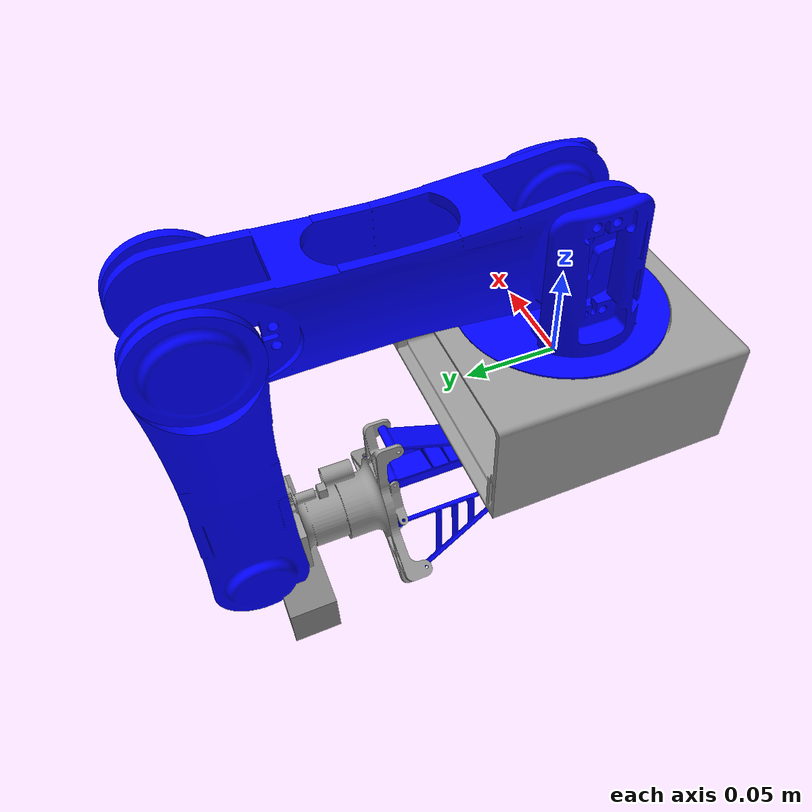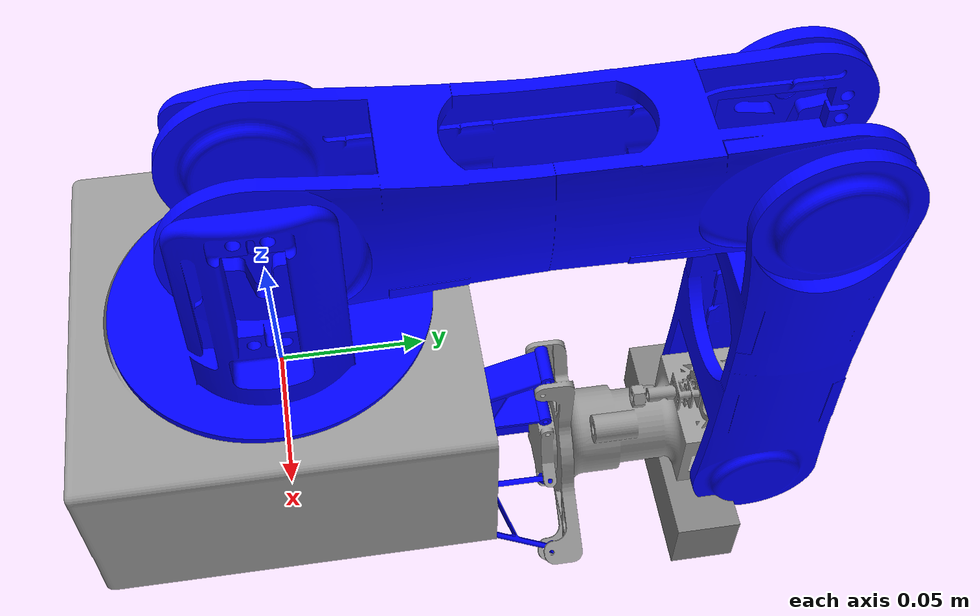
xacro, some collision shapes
<?xml version="1.0"?>
<robot name="agrirover" xmlns:xacro="http://www.ros.org/wiki/xacro">

  <xacro:include filename="$(find agrirover_description)/urdf/mech/arm_mech.urdf"/>
  <xacro:include filename="$(find agrirover_description)/urdf/sensors/intel_rgbd_cam_d435.urdf.xacro"/>

  <joint name="gripper_to_camera" type="fixed">
  <parent link="gripper"/>
  <child link="camera_head_link"/>
  <origin xyz="-0.025 0.02 0" rpy="1.57 0 -1.57"/>
  </joint>

</robot>

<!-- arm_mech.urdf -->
<robot name="arm">

<!-- Base Link -->
  <link name="base_link">
    <inertial>
      <mass value="5.0"/>
      <origin xyz="0 0 0" rpy="0 0 0"/>
      <inertia ixx="0.1" ixy="0.0" ixz="0.0" iyy="0.1" iyz="0.0" izz="0.1"/>
    </inertial>
    <visual>
      <geometry>
        <mesh filename="package://agrirover_description/meshes/Base.stl" scale="0.001 0.001 0.001"/>
      </geometry>
      <material name="gray">
        <color rgba="0.6 0.6 0.6 1"/>
      </material>
    </visual>
    <collision>
      <geometry>
        <mesh filename="package://agrirover_description/meshes/Base_simplified.stl" scale="0.001 0.001 0.001"/>
      </geometry>
      <origin xyz="0 0 0" rpy="0 0 0"/>
    </collision>
  </link>

<!-- Arm Link 0 -->
  <link name="arm_link_0">
    <inertial>
      <mass value="3.0"/>
      <origin xyz="0 0 0" rpy="0 0 0"/>
      <inertia ixx="0.05" ixy="0.0" ixz="0.0" iyy="0.05" iyz="0.0" izz="0.05"/>
    </inertial>
    <visual>
      <geometry>
        <mesh filename="package://agrirover_description/meshes/Link_0.stl" scale="0.001 0.001 0.001"/>
      </geometry>
      <material name="blue">
        <color rgba="0 0 1 1"/>
      </material>
    </visual>
    <collision>
      <geometry>
        <mesh filename="package://agrirover_description/meshes/Link_0_simplified.stl" scale="0.001 0.001 0.001"/>
      </geometry>
      <origin xyz="0 0 0" rpy="0 0 0"/>
    </collision>
  </link>

<!-- Arm Link 1 -->
  <link name="arm_link_1">
    <inertial>
      <mass value="2.0"/>
      <origin xyz="0 0 0" rpy="0 0 0"/>
      <inertia ixx="0.03" ixy="0.0" ixz="0.0" iyy="0.03" iyz="0.0" izz="0.03"/>
    </inertial>
    <visual>
      <geometry>
        <mesh filename="package://agrirover_description/meshes/Link_1.stl" scale="0.001 0.001 0.001"/>
      </geometry>
      <material name="blue">
        <color rgba="0 0 1 1"/>
      </material>
    </visual>
    <collision>
      <geometry>
        <mesh filename="package://agrirover_description/meshes/Link_1.stl" scale="0.001 0.001 0.001"/>
      </geometry>
      <origin xyz="0 0 0" rpy="0 0 0"/>
    </collision>
  </link>

<!-- Arm Link 2 -->
  <link name="arm_link_2">
    <inertial>
      <mass value="1.5"/>
      <origin xyz="0 0 0" rpy="0 0 0"/>
      <inertia ixx="0.02" ixy="0.0" ixz="0.0" iyy="0.02" iyz="0.0" izz="0.02"/>
    </inertial>
    <visual>
      <geometry>
        <mesh filename="package://agrirover_description/meshes/Link_2.stl" scale="0.001 0.001 0.001"/>
      </geometry>
      <material name="blue">
        <color rgba="0 0 1 1"/>
      </material>
    </visual>
    <collision>
      <geometry>
        <mesh filename="package://agrirover_description/meshes/Link_2_simplified.stl" scale="0.001 0.001 0.001"/>
      </geometry>
      <origin xyz="0 0 0" rpy="0 0 0"/>
    </collision>
  </link>

<!-- World Link -->
  <link name="world"/>

  <!-- World to Base Joint -->
  <joint name="world_to_base" type="fixed">
    <parent link="world"/>
    <child link="base_link"/>
    <origin xyz="0 0 0" rpy="0 0 0"/>
  </joint>

<!-- Gripper Base -->
  <link name="gripper">
    <inertial>
      <mass value="0.5"/>
      <origin xyz="0 0 0" rpy="0 0 0"/>
      <inertia ixx="0.005" ixy="0.0" ixz="0.0" iyy="0.005" iyz="0.0" izz="0.005"/>
    </inertial>
    <visual>
      <geometry>
        <mesh filename="package://agrirover_description/meshes/gripper.stl" scale="0.001 0.001 0.001"/>
      </geometry>
      <material name="gray">
        <color rgba="0.6 0.6 0.6 1"/>
      </material>
    </visual>
    <collision>
      <geometry>
        <mesh filename="package://agrirover_description/meshes/gripper_simplified.stl" scale="0.001 0.001 0.001"/>
      </geometry>
    </collision>
  </link>

<!-- Finger 1 -->
  <link name="finger_1">
    <inertial>
      <mass value="0.1"/>
      <origin xyz="0 0 0" rpy="0 0 0"/>
      <inertia ixx="0.001" ixy="0.0" ixz="0.0" iyy="0.001" iyz="0.0" izz="0.001"/>
    </inertial>
    <visual>
      <geometry>
        <mesh filename="package://agrirover_description/meshes/finger.stl" scale="0.001 0.001 0.001"/>
      </geometry>
      <material name="blue">
        <color rgba="0 0 1 1"/>
      </material>
    </visual>
    <collision>
      <geometry>
        <mesh filename="package://agrirover_description/meshes/finger.stl" scale="0.001 0.001 0.001"/>
      </geometry>
    </collision>
  </link>

<!-- Finger 2 -->
  <link name="finger_2">
    <inertial>
      <mass value="0.1"/>
      <origin xyz="0 0 0" rpy="0 0 0"/>
      <inertia ixx="0.001" ixy="0.0" ixz="0.0" iyy="0.001" iyz="0.0" izz="0.001"/>
    </inertial>
    <visual>
      <geometry>
        <mesh filename="package://agrirover_description/meshes/finger.stl" scale="0.001 0.001 0.001"/>
      </geometry>
      <material name="blue">
        <color rgba="0 0 1 1"/>
      </material>
    </visual>
    <collision>
      <geometry>
        <mesh filename="package://agrirover_description/meshes/finger.stl" scale="0.001 0.001 0.001"/>
      </geometry>
    </collision>
  </link>

<!-- Finger 3 -->
  <link name="finger_3">
    <inertial>
      <mass value="0.1"/>
      <origin xyz="0 0 0" rpy="0 0 0"/>
      <inertia ixx="0.001" ixy="0.0" ixz="0.0" iyy="0.001" iyz="0.0" izz="0.001"/>
    </inertial>
    <visual>
      <geometry>
        <mesh filename="package://agrirover_description/meshes/finger.stl" scale="0.001 0.001 0.001"/>
      </geometry>
      <material name="blue">
        <color rgba="0 0 1 1"/>
      </material>
    </visual>
    <collision>
      <geometry>
        <mesh filename="package://agrirover_description/meshes/finger.stl" scale="0.001 0.001 0.001"/>
      </geometry>
    </collision>
  </link>

<!-- Base to arm_link_0 Joint -->
  <joint name="base_to_link_0" type="revolute">
    <parent link="base_link"/>
    <child link="arm_link_0"/>
    <origin xyz="0 0 0.03" rpy="0 0 1.57"/>
    <axis xyz="0 0 1"/>
    <limit effort="10.0" velocity="1.0" lower="0" upper="3.14"/>
  </joint>

<!-- arm_link_0 to arm_link_1 Joint -->
  <joint name="link_0_to_link_1" type="revolute">
    <parent link="arm_link_0"/>
    <child link="arm_link_1"/>
    <origin xyz="0 0 0.05" rpy="1.57 1.57 0"/>
    <axis xyz="0 0 1"/>
    <limit effort="10.0" velocity="1.0" lower="0" upper="3.14"/>
  </joint>

<!-- arm_link_1 to arm_link_2 Joint -->
  <joint name="link_1_to_link_2" type="revolute">
    <parent link="arm_link_1"/>
    <child link="arm_link_2"/>
    <origin xyz="0 0.176 0" rpy="0 0 -1.57"/>
    <axis xyz="0 0 1"/>
    <limit effort="10.0" velocity="1.0" lower="0" upper="3.14"/>
  </joint>

<!-- arm_link_2 to gripper Joint -->
  <joint name="link_2_to_gripper" type="revolute">
    <parent link="arm_link_2"/>
    <child link="gripper"/>
    <origin xyz="0 0.155 0" rpy="0 0 -1.57"/>
    <axis xyz="0 0 1"/>
    <limit effort="10.0" velocity="1.0" lower="0" upper="3.14"/>
  </joint>

<!-- finger_1 Joint -->
  <joint name="finger_1_joint" type="revolute">
    <parent link="gripper"/>
    <child link="finger_1"/>
    <origin xyz="0.02 0.08 -0.001" rpy="3.14 0 0"/>
    <axis xyz="0 0 1"/>
    <limit effort="10.0" velocity="1.0" lower="0" upper="0.9"/>
  </joint>

  <!-- Mimic Finger 2 Joint -->
  <joint name="finger_2_joint" type="fixed">
    <parent link="gripper"/>
    <child link="finger_2"/>
    <origin xyz="-0.0085 0.08 0.015" rpy="3.14 -2.0944 0"/>
    <axis xyz="0 0 1"/>  </joint>

<!-- Mimic Finger 3 Joint -->
  <joint name="finger_3_joint" type="fixed">
    <parent link="gripper"/>
    <child link="finger_3"/>
    <origin xyz="-0.0085 0.08 -0.015" rpy="3.14 2.0944 0"/>
    <axis xyz="0 0 1"/>
  </joint>

</robot>

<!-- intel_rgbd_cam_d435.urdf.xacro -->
<robot xmlns:xacro="http://www.ros.org/wiki/xacro">

  <xacro:arg name="use_camera" default="true"/>
  <xacro:arg name="use_gazebo" default="true"/>
  <xacro:arg name="prefix" default=""/>

  <xacro:if value="${'true' == '$(arg use_camera)' and 'true' == '$(arg use_gazebo)'}">

    <xacro:property name="M_PI" value="3.1415926535897931" />

    <xacro:property name="d435_cam_width" value="0.090"/>
    <xacro:property name="d435_cam_height" value="0.025"/>
    <xacro:property name="d435_cam_depth" value="0.02505"/>

    <xacro:property name="d435_cam_depth_to_infra1_offset" value="0.0"/>
    <xacro:property name="d435_cam_depth_to_infra2_offset" value="-0.050"/>
    <xacro:property name="d435_cam_depth_to_color_offset" value="0.015"/>

    <xacro:property name="camera_tilt_angle_deg" value="25"/>

    <link name="camera_head_link">
      <visual>
        <origin xyz="0 0 0" rpy="${M_PI/2} 0.0 ${M_PI/2}"/>
        <geometry>
          <mesh filename="file://$(find agrirover_description)/meshes/d435/visual/d435.stl" />
        </geometry>
        <material name="aluminum">
          <color rgba="0.5 0.5 0.5 1"/>
        </material>
      </visual>
      <collision>
        <origin xyz="0 0 0" rpy="0 0 0"/>
        <geometry>
          <box size="${d435_cam_depth} ${d435_cam_width} ${d435_cam_height}"/>
        </geometry>
      </collision>
      <inertial>
        <mass value="0.072" />
        <origin xyz="0 0 0" />
        <inertia ixx="0.003881243" ixy="0.0" ixz="0.0" iyy="0.000498940" iyz="0.0" izz="0.003879257" />
      </inertial>
    </link>

    <joint name="camera_head_depth_joint" type="fixed">
      <origin xyz="0 0 0" rpy="0 0 0"/>
      <parent link="camera_head_link"/>
      <child link="camera_head_depth_frame" />
    </joint>
    <link name="camera_head_depth_frame"/>

    <joint name="camera_head_depth_optical_joint" type="fixed">
      <origin xyz="0 0 0" rpy="${-M_PI/2} 0 ${-M_PI/2}" />
      <parent link="camera_head_depth_frame" />
      <child link="camera_head_depth_optical_frame" />
    </joint>
    <link name="camera_head_depth_optical_frame"/>

    <joint name="camera_head_infra1_joint" type="fixed">
      <origin xyz="0 ${d435_cam_depth_to_infra1_offset} 0" rpy="0 0 0" />
      <parent link="camera_head_link" />
      <child link="camera_head_infra1_frame" />
    </joint>
    <link name="camera_head_infra1_frame"/>

    <joint name="camera_head_infra1_optical_joint" type="fixed">
      <origin xyz="0 0 0" rpy="${-M_PI/2} 0 ${-M_PI/2}" />
      <parent link="camera_head_infra1_frame" />
      <child link="camera_head_infra1_optical_frame" />
    </joint>
    <link name="camera_head_infra1_optical_frame"/>

    <joint name="camera_head_infra2_joint" type="fixed">
      <origin xyz="0 ${d435_cam_depth_to_infra2_offset} 0" rpy="0 0 0" />
      <parent link="camera_head_link" />
      <child link="camera_head_infra2_frame" />
    </joint>
    <link name="camera_head_infra2_frame"/>

    <joint name="camera_head_infra2_optical_joint" type="fixed">
      <origin xyz="0 0 0" rpy="${-M_PI/2} 0 ${-M_PI/2}" />
      <parent link="camera_head_infra2_frame" />
      <child link="camera_head_infra2_optical_frame" />
    </joint>
    <link name="camera_head_infra2_optical_frame"/>

    <joint name="camera_head_color_joint" type="fixed">
      <origin xyz="0 ${d435_cam_depth_to_color_offset} 0" rpy="0 0 0" />
      <parent link="camera_head_link" />
      <child link="camera_head_color_frame" />
    </joint>
    <link name="camera_head_color_frame"/>

    <joint name="camera_head_color_optical_joint" type="fixed">
      <origin xyz="0 0 0" rpy="${-M_PI/2} 0 ${-M_PI/2}" />
      <parent link="camera_head_color_frame" />
      <child link="camera_head_color_optical_frame" />
    </joint>
    <link name="camera_head_color_optical_frame"/>

    <gazebo reference="camera_head_link">
      <sensor name="camera_head" type="rgbd_camera">
        <camera>
          <horizontal_fov>1.5184</horizontal_fov>
          <image>
            <width>424</width>
            <height>240</height>
          </image>
          <clip>
            <near>0.05</near>
            <far>1.5</far>
          </clip>
        </camera>
        <always_on>1</always_on>
        <gz_frame_id>camera_head_link</gz_frame_id>
        <topic>camera_head</topic>
        <update_rate>5</update_rate>
        <visualize>true</visualize>
      </sensor>
    </gazebo>

  </xacro:if>
</robot>
